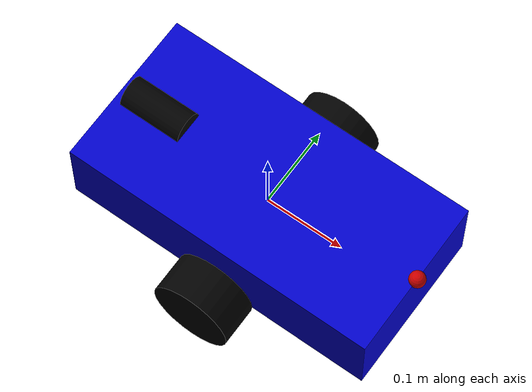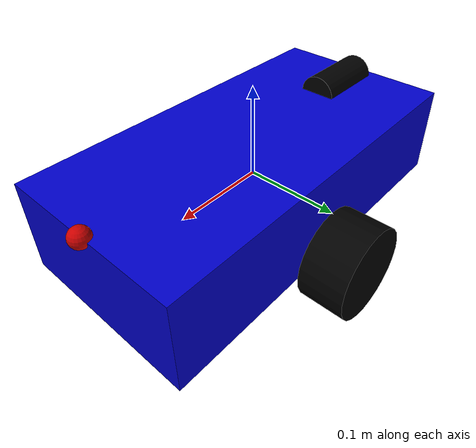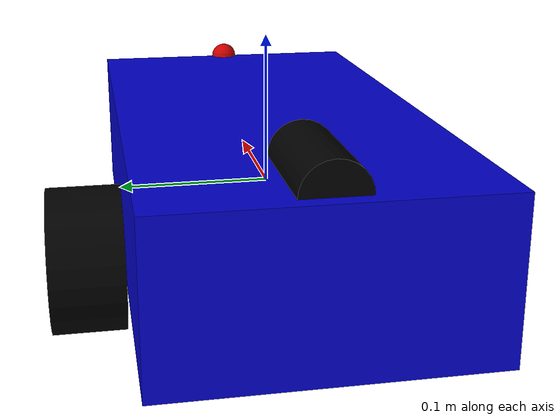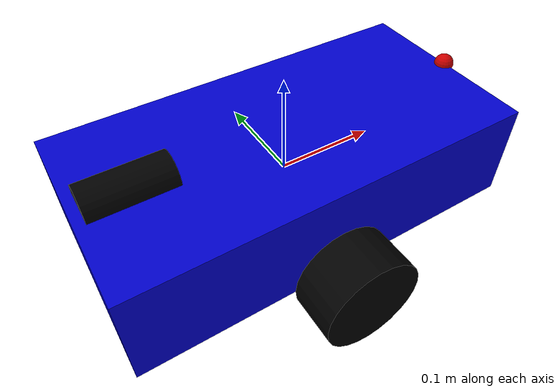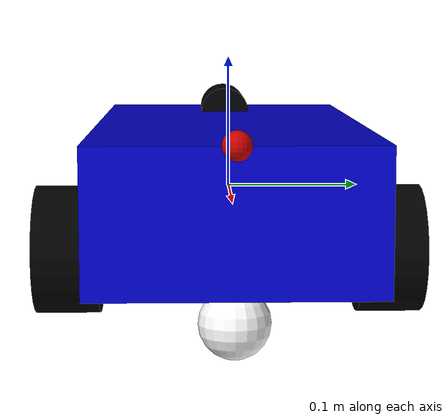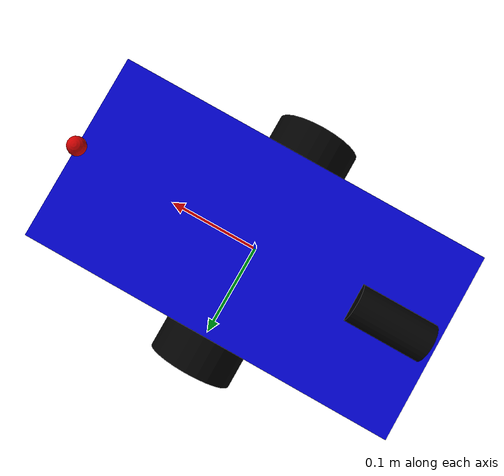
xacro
<?xml version="1.0"?>
<robot xmlns:xacro="http://www.ros.org/wiki/xacro" name="car">

  <!-- Materials -->
  <material name="blue">
    <color rgba="0 0 0.8 1"/>
  </material>
  <material name="black">
    <color rgba="0 0 0 1"/>
  </material>
  <material name="white">
    <color rgba="1 1 1 1"/>
  </material>
  <material name="red">
    <color rgba="0.8 0 0 1"/>
  </material>
  <material name="green">
    <color rgba="0 0.8 0 1"/>
  </material>

  <!-- Base Link -->
  <link name="base_link">
    <visual>
      <geometry>
        <box size="0.4 0.2 0.1"/>
      </geometry>
      <material name="blue"/>
    </visual>
    <collision>
      <geometry>
        <box size="0.4 0.2 0.1"/>
      </geometry>
    </collision>
    <inertial>
      <mass value="1.0"/>
      <inertia ixx="0.01" ixy="0.0" ixz="0.0" iyy="0.01" iyz="0.0" izz="0.01"/>
    </inertial>
  </link>

  <!-- Right Wheel -->
  <link name="right_wheel">
    <visual>
      <origin rpy="1.57075 0 0" xyz="0 0 0"/>
      <geometry>
        <cylinder length="0.05" radius="0.05"/>
      </geometry>
      <material name="black"/>
    </visual>
    <collision>
      <origin rpy="1.57075 0 0" xyz="0 0 0"/>
      <geometry>
        <cylinder length="0.05" radius="0.05"/>
      </geometry>
    </collision>
    <inertial>
      <mass value="0.1"/>
      <inertia ixx="0.001" ixy="0.0" ixz="0.0" iyy="0.001" iyz="0.0" izz="0.001"/>
    </inertial>
  </link>

  <joint name="right_wheel_joint" type="continuous">
    <parent link="base_link"/>
    <child link="right_wheel"/>
    <origin xyz="0 -0.125 -0.05" rpy="0 0 0"/>
    <axis xyz="0 1 0"/>
  </joint>

  <!-- Left Wheel -->
  <link name="left_wheel">
    <visual>
      <origin rpy="1.57075 0 0" xyz="0 0 0"/>
      <geometry>
        <cylinder length="0.05" radius="0.05"/>
      </geometry>
      <material name="black"/>
    </visual>
    <collision>
      <origin rpy="1.57075 0 0" xyz="0 0 0"/>
      <geometry>
        <cylinder length="0.05" radius="0.05"/>
      </geometry>
    </collision>
    <inertial>
      <mass value="0.1"/>
      <inertia ixx="0.001" ixy="0.0" ixz="0.0" iyy="0.001" iyz="0.0" izz="0.001"/>
    </inertial>
  </link>

  <joint name="left_wheel_joint" type="continuous">
    <parent link="base_link"/>
    <child link="left_wheel"/>
    <origin xyz="0 0.125 -0.05" rpy="0 0 0"/>
    <axis xyz="0 1 0"/>
  </joint>

  <!-- Caster Wheel -->
  <link name="caster_wheel">
    <visual>
      <geometry>
        <sphere radius="0.025"/>
      </geometry>
      <material name="white"/>
    </visual>
    <collision>
      <geometry>
        <sphere radius="0.025"/>
      </geometry>
    </collision>
    <inertial>
      <mass value="0.05"/>
      <inertia ixx="0.0001" ixy="0.0" ixz="0.0" iyy="0.0001" iyz="0.0" izz="0.0001"/>
    </inertial>
  </link>

  <joint name="caster_wheel_joint" type="fixed">
    <parent link="base_link"/>
    <child link="caster_wheel"/>
    <origin xyz="0.15 0 -0.075" rpy="0 0 0"/>
  </joint>

  <!-- Motor -->
  <link name="motor">
    <visual>
      <geometry>
        <cylinder length="0.08" radius="0.02"/>
      </geometry>
      <material name="black"/>
    </visual>
    <collision>
      <geometry>
        <cylinder length="0.08" radius="0.02"/>
      </geometry>
    </collision>
    <inertial>
      <mass value="0.2"/>
      <inertia ixx="0.0001" ixy="0.0" ixz="0.0" iyy="0.0001" iyz="0.0" izz="0.0001"/>
    </inertial>
  </link>

  <joint name="motor_joint" type="fixed">
    <parent link="base_link"/>
    <child link="motor"/>
    <origin xyz="-0.15 0 0.05" rpy="0 1.57075 0"/>
  </joint>

  <!-- LED -->
  <link name="led">
    <visual>
      <geometry>
        <sphere radius="0.01"/>
      </geometry>
      <material name="red"/>
    </visual>
    <collision>
      <geometry>
        <sphere radius="0.01"/>
      </geometry>
    </collision>
    <inertial>
      <mass value="0.01"/>
      <inertia ixx="0.00001" ixy="0.0" ixz="0.0" iyy="0.00001" iyz="0.0" izz="0.00001"/>
    </inertial>
  </link>

  <joint name="led_joint" type="fixed">
    <parent link="base_link"/>
    <child link="led"/>
    <origin xyz="0.2 0 0.05" rpy="0 0 0"/>
  </joint>

</robot>
